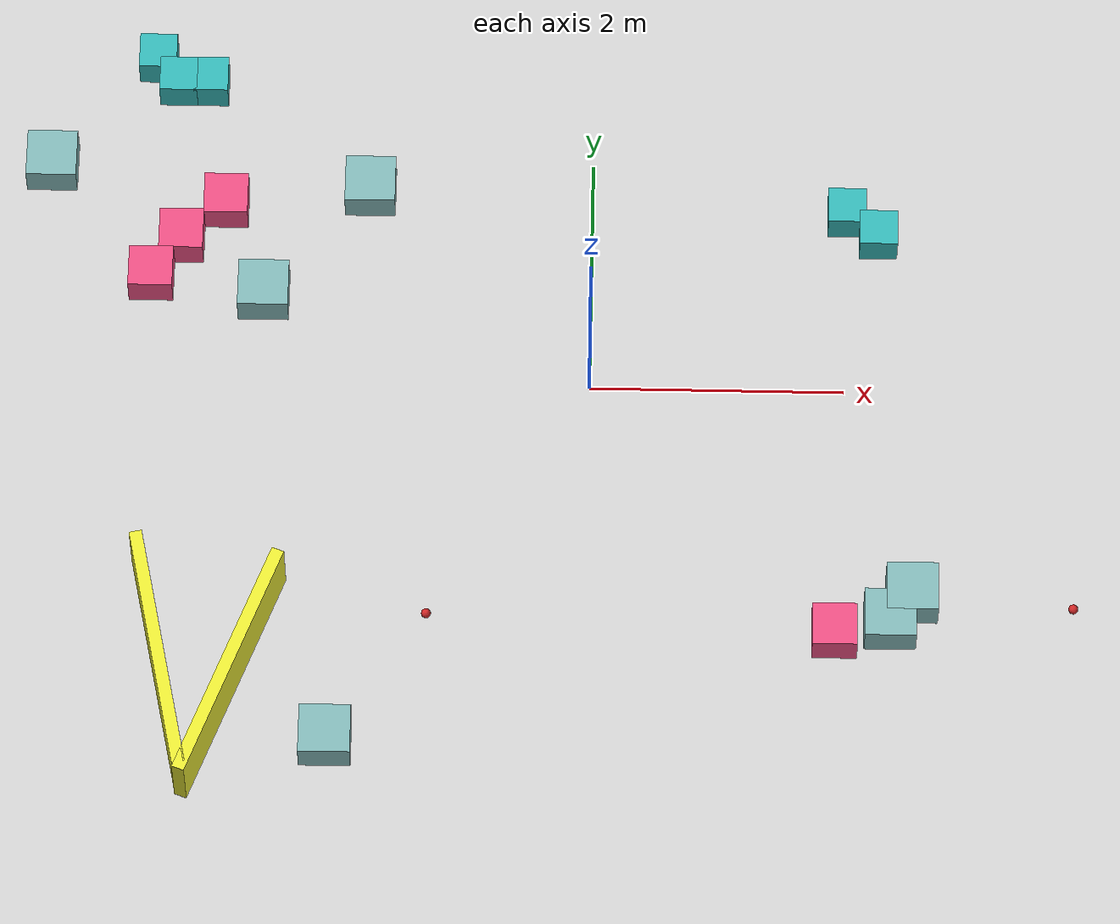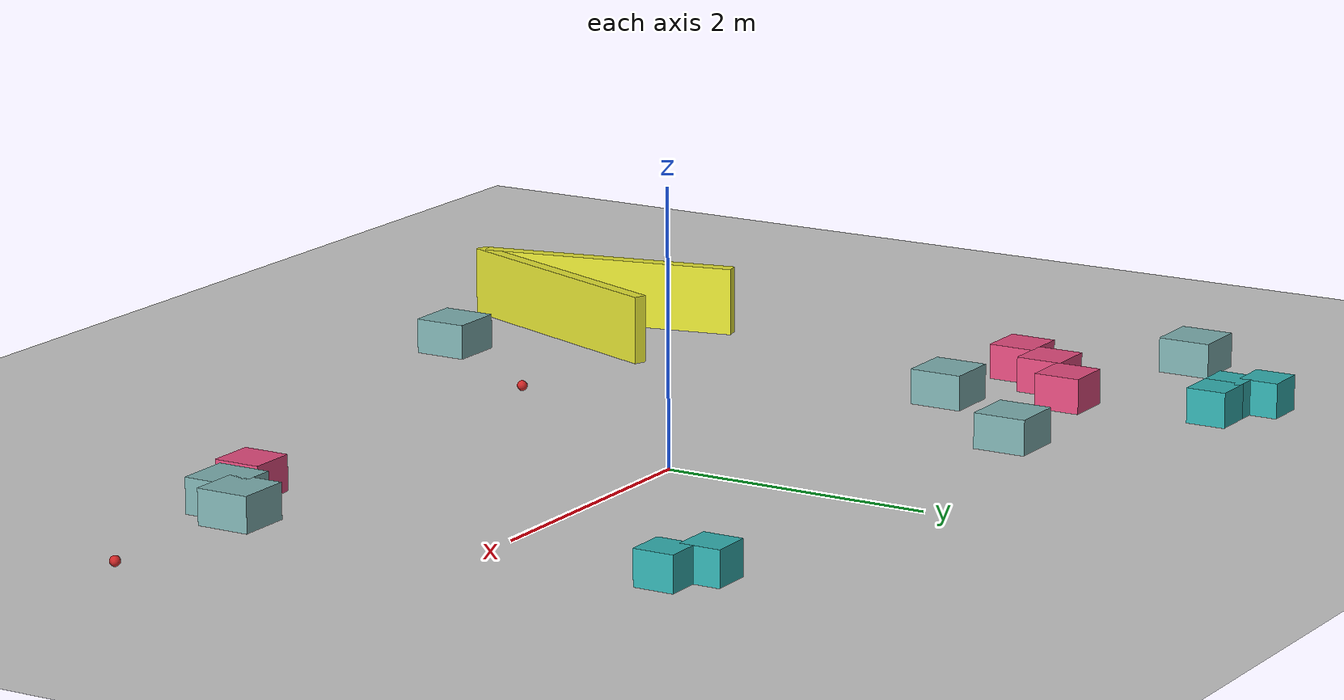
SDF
<sdf version="1.7">
 <world name="default">
  <model name="ground_plane">
   <static>1</static>
   <link name="link">
    <collision name="collision">
     <geometry><plane><normal>0 0 1</normal><size>100 100</size></plane></geometry>
     <surface><friction><ode><mu>100</mu><mu2>50</mu2></ode></friction></surface>
    </collision>
    <visual name="visual">
     <cast_shadows>0</cast_shadows>
     <geometry><plane><normal>0 0 1</normal><size>100 100</size></plane></geometry>
     <material>
      <script><uri>file://media/materials/scripts/gazebo.material</uri><name>Gazebo/Grey</name></script>
     </material>
    </visual>
   </link>
  </model>
  <model name="fl4sr_real_arena_8_target">
   <model name="target_ball_1">
    <link name="link">
     <pose>0 0 0.0375 0 -0 0</pose>
     <inertial>
      <mass>0.1467</mass>
      <inertia>
       <ixx>8.25187e-05</ixx>
       <ixy>0</ixy>
       <ixz>0</ixz>
       <iyy>8.25187e-05</iyy>
       <iyz>0</iyz>
       <izz>8.25187e-05</izz>
      </inertia>
     </inertial>
     <velocity_decay><linear>0</linear><angular>0.005</angular></velocity_decay>
     <visual name="visual">
      <geometry><sphere><radius>0.0375</radius></sphere></geometry>
      <material>
       <script><uri>file://media/materials/scripts/gazebo.material</uri><name>Gazebo/Red</name></script>
       <shader type="pixel"/>
      </material>
     </visual>
     <collision name="collision">
      <geometry><sphere><radius>0.0375</radius></sphere></geometry>
      <surface>
       <friction>
        <ode><mu>1</mu><mu2>1</mu2><fdir1>0 0 0</fdir1><slip1>0</slip1><slip2>0</slip2></ode>
        <torsional>
         <coefficient>1</coefficient>
         <patch_radius>0</patch_radius>
         <surface_radius>0.01</surface_radius>
         <use_patch_radius>0</use_patch_radius>
         <ode><slip>0</slip></ode>
        </torsional>
       </friction>
       <bounce><restitution_coefficient>0</restitution_coefficient><threshold>1e+06</threshold></bounce>
       <contact>
        <collide_without_contact>0</collide_without_contact>
        <collide_without_contact_bitmask>1</collide_without_contact_bitmask>
        <collide_bitmask>1</collide_bitmask>
        <ode>
         <soft_cfm>0</soft_cfm>
         <soft_erp>0.2</soft_erp>
         <kp>100000</kp>
         <kd>100</kd>
         <max_vel>100</max_vel>
         <min_depth>0.001</min_depth>
        </ode>
        <bullet>
         <split_impulse>1</split_impulse>
         <split_impulse_penetration_threshold>-0.01</split_impulse_penetration_threshold>
         <soft_cfm>0</soft_cfm>
         <soft_erp>0.2</soft_erp>
         <kp>100000</kp>
         <kd>100</kd>
        </bullet>
       </contact>
      </surface>
     </collision>
    </link>
    <static>0</static>
    <pose>2.09475 -2.72667 0 0 -0 0</pose>
   </model>
   <model name="target_ball_5">
    <link name="link">
     <pose>0 0 0.0375 0 -0 0</pose>
     <inertial>
      <mass>0.1467</mass>
      <inertia>
       <ixx>8.25187e-05</ixx>
       <ixy>0</ixy>
       <ixz>0</ixz>
       <iyy>8.25187e-05</iyy>
       <iyz>0</iyz>
       <izz>8.25187e-05</izz>
      </inertia>
     </inertial>
     <velocity_decay><linear>0</linear><angular>0.005</angular></velocity_decay>
     <visual name="visual">
      <geometry><sphere><radius>0.0375</radius></sphere></geometry>
      <material>
       <script><uri>file://media/materials/scripts/gazebo.material</uri><name>Gazebo/Red</name></script>
       <shader type="pixel"/>
      </material>
     </visual>
     <collision name="collision">
      <geometry><sphere><radius>0.0375</radius></sphere></geometry>
      <surface>
       <friction>
        <ode><mu>1</mu><mu2>1</mu2><fdir1>0 0 0</fdir1><slip1>0</slip1><slip2>0</slip2></ode>
        <torsional>
         <coefficient>1</coefficient>
         <patch_radius>0</patch_radius>
         <surface_radius>0.01</surface_radius>
         <use_patch_radius>0</use_patch_radius>
         <ode><slip>0</slip></ode>
        </torsional>
       </friction>
       <bounce><restitution_coefficient>0</restitution_coefficient><threshold>1e+06</threshold></bounce>
       <contact>
        <collide_without_contact>0</collide_without_contact>
        <collide_without_contact_bitmask>1</collide_without_contact_bitmask>
        <collide_bitmask>1</collide_bitmask>
        <ode>
         <soft_cfm>0</soft_cfm>
         <soft_erp>0.2</soft_erp>
         <kp>100000</kp>
         <kd>100</kd>
         <max_vel>100</max_vel>
         <min_depth>0.001</min_depth>
        </ode>
        <bullet>
         <split_impulse>1</split_impulse>
         <split_impulse_penetration_threshold>-0.01</split_impulse_penetration_threshold>
         <soft_cfm>0</soft_cfm>
         <soft_erp>0.2</soft_erp>
         <kp>100000</kp>
         <kd>100</kd>
        </bullet>
       </contact>
      </surface>
     </collision>
    </link>
    <static>0</static>
    <pose>-2.93744 -2.85263 0 0 -0 0</pose>
   </model>
   <static>0</static>
   <pose>1.69407 0.837479 0 0 -0 0</pose>
  </model>
  <model name="unit_box_0.3_0">
   <link name="link">
    <inertial>
     <mass>1</mass>
     <inertia>
      <ixx>0.166667</ixx>
      <ixy>0</ixy>
      <ixz>0</ixz>
      <iyy>0.166667</iyy>
      <iyz>0</iyz>
      <izz>0.166667</izz>
     </inertia>
    </inertial>
    <visual name="visual">
     <geometry><box><size>0.3 0.3 0.5</size></box></geometry>
     <material>
      <script><name>Gazebo/Grey</name><uri>file://media/materials/scripts/gazebo.material</uri></script>
      <shader type="pixel"><normal_map>__default__</normal_map></shader>
      <ambient>0.2 0.7 0.7 1</ambient>
      <diffuse>0.7 0.7 0.7 1</diffuse>
      <specular>0.01 0.01 0.01 1</specular>
      <emissive>0 0 0 1</emissive>
     </material>
    </visual>
    <collision name="collision">
     <geometry><box><size>0.3 0.3 0.5</size></box></geometry>
     <surface>
      <friction>
       <ode><mu>1</mu><mu2>1</mu2><fdir1>0 0 0</fdir1><slip1>0</slip1><slip2>0</slip2></ode>
       <torsional>
        <coefficient>1</coefficient>
        <patch_radius>0</patch_radius>
        <surface_radius>0</surface_radius>
        <use_patch_radius>1</use_patch_radius>
        <ode><slip>0</slip></ode>
       </torsional>
      </friction>
      <bounce><restitution_coefficient>0</restitution_coefficient><threshold>1e+06</threshold></bounce>
      <contact>
       <collide_without_contact>0</collide_without_contact>
       <collide_without_contact_bitmask>1</collide_without_contact_bitmask>
       <collide_bitmask>1</collide_bitmask>
       <ode>
        <soft_cfm>0</soft_cfm>
        <soft_erp>0.2</soft_erp>
        <kp>1e+13</kp>
        <kd>1</kd>
        <max_vel>0.01</max_vel>
        <min_depth>0</min_depth>
       </ode>
       <bullet>
        <split_impulse>1</split_impulse>
        <split_impulse_penetration_threshold>-0.01</split_impulse_penetration_threshold>
        <soft_cfm>0</soft_cfm>
        <soft_erp>0.2</soft_erp>
        <kp>1e+13</kp>
        <kd>1</kd>
       </bullet>
      </contact>
     </surface>
    </collision>
   </link>
   <static>0</static>
   <pose>2.27602 1.36252 0 0 -0 0</pose>
  </model>
  <model name="unit_box_0.3_1">
   <link name="link">
    <inertial>
     <mass>1</mass>
     <inertia>
      <ixx>0.166667</ixx>
      <ixy>0</ixy>
      <ixz>0</ixz>
      <iyy>0.166667</iyy>
      <iyz>0</iyz>
      <izz>0.166667</izz>
     </inertia>
    </inertial>
    <visual name="visual">
     <geometry><box><size>0.3 0.3 0.5</size></box></geometry>
     <material>
      <script><name>Gazebo/Grey</name><uri>file://media/materials/scripts/gazebo.material</uri></script>
      <shader type="pixel"><normal_map>__default__</normal_map></shader>
      <ambient>0.2 0.7 0.7 1</ambient>
      <diffuse>0.7 0.7 0.7 1</diffuse>
      <specular>0.01 0.01 0.01 1</specular>
      <emissive>0 0 0 1</emissive>
     </material>
    </visual>
    <collision name="collision">
     <geometry><box><size>0.3 0.3 0.5</size></box></geometry>
     <surface>
      <friction>
       <ode><mu>1</mu><mu2>1</mu2><fdir1>0 0 0</fdir1><slip1>0</slip1><slip2>0</slip2></ode>
       <torsional>
        <coefficient>1</coefficient>
        <patch_radius>0</patch_radius>
        <surface_radius>0</surface_radius>
        <use_patch_radius>1</use_patch_radius>
        <ode><slip>0</slip></ode>
       </torsional>
      </friction>
      <bounce><restitution_coefficient>0</restitution_coefficient><threshold>1e+06</threshold></bounce>
      <contact>
       <collide_without_contact>0</collide_without_contact>
       <collide_without_contact_bitmask>1</collide_without_contact_bitmask>
       <collide_bitmask>1</collide_bitmask>
       <ode>
        <soft_cfm>0</soft_cfm>
        <soft_erp>0.2</soft_erp>
        <kp>1e+13</kp>
        <kd>1</kd>
        <max_vel>0.01</max_vel>
        <min_depth>0</min_depth>
       </ode>
       <bullet>
        <split_impulse>1</split_impulse>
        <split_impulse_penetration_threshold>-0.01</split_impulse_penetration_threshold>
        <soft_cfm>0</soft_cfm>
        <soft_erp>0.2</soft_erp>
        <kp>1e+13</kp>
        <kd>1</kd>
       </bullet>
      </contact>
     </surface>
    </collision>
   </link>
   <static>0</static>
   <pose>2.02631 1.5587 0 0 -0 0</pose>
  </model>
  <model name="unit_box_0.35">
   <link name="link">
    <inertial>
     <mass>1</mass>
     <inertia>
      <ixx>0.166667</ixx>
      <ixy>0</ixy>
      <ixz>0</ixz>
      <iyy>0.166667</iyy>
      <iyz>0</iyz>
      <izz>0.166667</izz>
     </inertia>
    </inertial>
    <visual name="visual">
     <geometry><box><size>0.35 0.35 0.5</size></box></geometry>
     <material>
      <script><name>Gazebo/Grey</name><uri>file://media/materials/scripts/gazebo.material</uri></script>
      <shader type="pixel"><normal_map>__default__</normal_map></shader>
      <ambient>0.9 0.3 0.5 1</ambient>
      <diffuse>0.7 0.7 0.7 1</diffuse>
      <specular>0.01 0.01 0.01 1</specular>
      <emissive>0 0 0 1</emissive>
     </material>
    </visual>
    <collision name="collision">
     <geometry><box><size>0.35 0.35 0.5</size></box></geometry>
     <surface>
      <friction>
       <ode><mu>1</mu><mu2>1</mu2><fdir1>0 0 0</fdir1><slip1>0</slip1><slip2>0</slip2></ode>
       <torsional>
        <coefficient>1</coefficient>
        <patch_radius>0</patch_radius>
        <surface_radius>0</surface_radius>
        <use_patch_radius>1</use_patch_radius>
        <ode><slip>0</slip></ode>
       </torsional>
      </friction>
      <bounce><restitution_coefficient>0</restitution_coefficient><threshold>1e+06</threshold></bounce>
      <contact>
       <collide_without_contact>0</collide_without_contact>
       <collide_without_contact_bitmask>1</collide_without_contact_bitmask>
       <collide_bitmask>1</collide_bitmask>
       <ode>
        <soft_cfm>0</soft_cfm>
        <soft_erp>0.2</soft_erp>
        <kp>1e+13</kp>
        <kd>1</kd>
        <max_vel>0.01</max_vel>
        <min_depth>0</min_depth>
       </ode>
       <bullet>
        <split_impulse>1</split_impulse>
        <split_impulse_penetration_threshold>-0.01</split_impulse_penetration_threshold>
        <soft_cfm>0</soft_cfm>
        <soft_erp>0.2</soft_erp>
        <kp>1e+13</kp>
        <kd>1</kd>
       </bullet>
      </contact>
     </surface>
    </collision>
   </link>
   <static>0</static>
   <pose>1.92798 -2.14456 0 0 -0 0</pose>
  </model>
  <model name="unit_box_0.35_clone_clone_0">
   <link name="link">
    <inertial>
     <mass>1</mass>
     <inertia>
      <ixx>0.166667</ixx>
      <ixy>0</ixy>
      <ixz>0</ixz>
      <iyy>0.166667</iyy>
      <iyz>0</iyz>
      <izz>0.166667</izz>
     </inertia>
    </inertial>
    <visual name="visual">
     <geometry><box><size>0.35 0.35 0.5</size></box></geometry>
     <material>
      <script><name>Gazebo/Grey</name><uri>file://media/materials/scripts/gazebo.material</uri></script>
      <shader type="pixel"><normal_map>__default__</normal_map></shader>
      <ambient>0.9 0.3 0.5 1</ambient>
      <diffuse>0.7 0.7 0.7 1</diffuse>
      <specular>0.01 0.01 0.01 1</specular>
      <emissive>0 0 0 1</emissive>
     </material>
    </visual>
    <collision name="collision">
     <geometry><box><size>0.35 0.35 0.5</size></box></geometry>
     <surface>
      <friction>
       <ode><mu>1</mu><mu2>1</mu2><fdir1>0 0 0</fdir1><slip1>0</slip1><slip2>0</slip2></ode>
       <torsional>
        <coefficient>1</coefficient>
        <patch_radius>0</patch_radius>
        <surface_radius>0</surface_radius>
        <use_patch_radius>1</use_patch_radius>
        <ode><slip>0</slip></ode>
       </torsional>
      </friction>
      <bounce><restitution_coefficient>0</restitution_coefficient><threshold>1e+06</threshold></bounce>
      <contact>
       <collide_without_contact>0</collide_without_contact>
       <collide_without_contact_bitmask>1</collide_without_contact_bitmask>
       <collide_bitmask>1</collide_bitmask>
       <ode>
        <soft_cfm>0</soft_cfm>
        <soft_erp>0.2</soft_erp>
        <kp>1e+13</kp>
        <kd>1</kd>
        <max_vel>0.01</max_vel>
        <min_depth>0</min_depth>
       </ode>
       <bullet>
        <split_impulse>1</split_impulse>
        <split_impulse_penetration_threshold>-0.01</split_impulse_penetration_threshold>
        <soft_cfm>0</soft_cfm>
        <soft_erp>0.2</soft_erp>
        <kp>1e+13</kp>
        <kd>1</kd>
       </bullet>
      </contact>
     </surface>
    </collision>
   </link>
   <static>0</static>
   <pose>-2.92813 1.58019 0 0 -0 0</pose>
  </model>
  <model name="unit_box_0.35_clone_clone_1">
   <link name="link">
    <inertial>
     <mass>1</mass>
     <inertia>
      <ixx>0.166667</ixx>
      <ixy>0</ixy>
      <ixz>0</ixz>
      <iyy>0.166667</iyy>
      <iyz>0</iyz>
      <izz>0.166667</izz>
     </inertia>
    </inertial>
    <visual name="visual">
     <geometry><box><size>0.35 0.35 0.5</size></box></geometry>
     <material>
      <script><name>Gazebo/Grey</name><uri>file://media/materials/scripts/gazebo.material</uri></script>
      <shader type="pixel"><normal_map>__default__</normal_map></shader>
      <ambient>0.9 0.3 0.5 1</ambient>
      <diffuse>0.7 0.7 0.7 1</diffuse>
      <specular>0.01 0.01 0.01 1</specular>
      <emissive>0 0 0 1</emissive>
     </material>
    </visual>
    <collision name="collision">
     <geometry><box><size>0.35 0.35 0.5</size></box></geometry>
     <surface>
      <friction>
       <ode><mu>1</mu><mu2>1</mu2><fdir1>0 0 0</fdir1><slip1>0</slip1><slip2>0</slip2></ode>
       <torsional>
        <coefficient>1</coefficient>
        <patch_radius>0</patch_radius>
        <surface_radius>0</surface_radius>
        <use_patch_radius>1</use_patch_radius>
        <ode><slip>0</slip></ode>
       </torsional>
      </friction>
      <bounce><restitution_coefficient>0</restitution_coefficient><threshold>1e+06</threshold></bounce>
      <contact>
       <collide_without_contact>0</collide_without_contact>
       <collide_without_contact_bitmask>1</collide_without_contact_bitmask>
       <collide_bitmask>1</collide_bitmask>
       <ode>
        <soft_cfm>0</soft_cfm>
        <soft_erp>0.2</soft_erp>
        <kp>1e+13</kp>
        <kd>1</kd>
        <max_vel>0.01</max_vel>
        <min_depth>0</min_depth>
       </ode>
       <bullet>
        <split_impulse>1</split_impulse>
        <split_impulse_penetration_threshold>-0.01</split_impulse_penetration_threshold>
        <soft_cfm>0</soft_cfm>
        <soft_erp>0.2</soft_erp>
        <kp>1e+13</kp>
        <kd>1</kd>
       </bullet>
      </contact>
     </surface>
    </collision>
   </link>
   <static>0</static>
   <pose>-3.27276 1.25494 0 0 -0 0</pose>
  </model>
  <model name="unit_box_0.35_clone_clone_2">
   <link name="link">
    <inertial>
     <mass>1</mass>
     <inertia>
      <ixx>0.166667</ixx>
      <ixy>0</ixy>
      <ixz>0</ixz>
      <iyy>0.166667</iyy>
      <iyz>0</iyz>
      <izz>0.166667</izz>
     </inertia>
    </inertial>
    <visual name="visual">
     <geometry><box><size>0.35 0.35 0.5</size></box></geometry>
     <material>
      <script><name>Gazebo/Grey</name><uri>file://media/materials/scripts/gazebo.material</uri></script>
      <shader type="pixel"><normal_map>__default__</normal_map></shader>
      <ambient>0.9 0.3 0.5 1</ambient>
      <diffuse>0.7 0.7 0.7 1</diffuse>
      <specular>0.01 0.01 0.01 1</specular>
      <emissive>0 0 0 1</emissive>
     </material>
    </visual>
    <collision name="collision">
     <geometry><box><size>0.35 0.35 0.5</size></box></geometry>
     <surface>
      <friction>
       <ode><mu>1</mu><mu2>1</mu2><fdir1>0 0 0</fdir1><slip1>0</slip1><slip2>0</slip2></ode>
       <torsional>
        <coefficient>1</coefficient>
        <patch_radius>0</patch_radius>
        <surface_radius>0</surface_radius>
        <use_patch_radius>1</use_patch_radius>
        <ode><slip>0</slip></ode>
       </torsional>
      </friction>
      <bounce><restitution_coefficient>0</restitution_coefficient><threshold>1e+06</threshold></bounce>
      <contact>
       <collide_without_contact>0</collide_without_contact>
       <collide_without_contact_bitmask>1</collide_without_contact_bitmask>
       <collide_bitmask>1</collide_bitmask>
       <ode>
        <soft_cfm>0</soft_cfm>
        <soft_erp>0.2</soft_erp>
        <kp>1e+13</kp>
        <kd>1</kd>
        <max_vel>0.01</max_vel>
        <min_depth>0</min_depth>
       </ode>
       <bullet>
        <split_impulse>1</split_impulse>
        <split_impulse_penetration_threshold>-0.01</split_impulse_penetration_threshold>
        <soft_cfm>0</soft_cfm>
        <soft_erp>0.2</soft_erp>
        <kp>1e+13</kp>
        <kd>1</kd>
       </bullet>
      </contact>
     </surface>
    </collision>
   </link>
   <static>0</static>
   <pose>-3.50234 0.910557 0 0 -0 0</pose>
  </model>
  <model name="unit_box_0.3_1_clone_clone">
   <link name="link">
    <inertial>
     <mass>1</mass>
     <inertia>
      <ixx>0.166667</ixx>
      <ixy>0</ixy>
      <ixz>0</ixz>
      <iyy>0.166667</iyy>
      <iyz>0</iyz>
      <izz>0.166667</izz>
     </inertia>
    </inertial>
    <visual name="visual">
     <geometry><box><size>0.3 0.3 0.5</size></box></geometry>
     <material>
      <script><name>Gazebo/Grey</name><uri>file://media/materials/scripts/gazebo.material</uri></script>
      <shader type="pixel"><normal_map>__default__</normal_map></shader>
      <ambient>0.2 0.7 0.7 1</ambient>
      <diffuse>0.7 0.7 0.7 1</diffuse>
      <specular>0.01 0.01 0.01 1</specular>
      <emissive>0 0 0 1</emissive>
     </material>
    </visual>
    <collision name="collision">
     <geometry><box><size>0.3 0.3 0.5</size></box></geometry>
     <surface>
      <friction>
       <ode><mu>1</mu><mu2>1</mu2><fdir1>0 0 0</fdir1><slip1>0</slip1><slip2>0</slip2></ode>
       <torsional>
        <coefficient>1</coefficient>
        <patch_radius>0</patch_radius>
        <surface_radius>0</surface_radius>
        <use_patch_radius>1</use_patch_radius>
        <ode><slip>0</slip></ode>
       </torsional>
      </friction>
      <bounce><restitution_coefficient>0</restitution_coefficient><threshold>1e+06</threshold></bounce>
      <contact>
       <collide_without_contact>0</collide_without_contact>
       <collide_without_contact_bitmask>1</collide_without_contact_bitmask>
       <collide_bitmask>1</collide_bitmask>
       <ode>
        <soft_cfm>0</soft_cfm>
        <soft_erp>0.2</soft_erp>
        <kp>1e+13</kp>
        <kd>1</kd>
        <max_vel>0.01</max_vel>
        <min_depth>0</min_depth>
       </ode>
       <bullet>
        <split_impulse>1</split_impulse>
        <split_impulse_penetration_threshold>-0.01</split_impulse_penetration_threshold>
        <soft_cfm>0</soft_cfm>
        <soft_erp>0.2</soft_erp>
        <kp>1e+13</kp>
        <kd>1</kd>
       </bullet>
      </contact>
     </surface>
    </collision>
   </link>
   <static>0</static>
   <pose>-3.35003 2.67149 0 0 -0 0</pose>
  </model>
  <model name="unit_box_0.3_1_clone_clone_0">
   <link name="link">
    <inertial>
     <mass>1</mass>
     <inertia>
      <ixx>0.166667</ixx>
      <ixy>0</ixy>
      <ixz>0</ixz>
      <iyy>0.166667</iyy>
      <iyz>0</iyz>
      <izz>0.166667</izz>
     </inertia>
    </inertial>
    <visual name="visual">
     <geometry><box><size>0.3 0.3 0.5</size></box></geometry>
     <material>
      <script><name>Gazebo/Grey</name><uri>file://media/materials/scripts/gazebo.material</uri></script>
      <shader type="pixel"><normal_map>__default__</normal_map></shader>
      <ambient>0.2 0.7 0.7 1</ambient>
      <diffuse>0.7 0.7 0.7 1</diffuse>
      <specular>0.01 0.01 0.01 1</specular>
      <emissive>0 0 0 1</emissive>
     </material>
    </visual>
    <collision name="collision">
     <geometry><box><size>0.3 0.3 0.5</size></box></geometry>
     <surface>
      <friction>
       <ode><mu>1</mu><mu2>1</mu2><fdir1>0 0 0</fdir1><slip1>0</slip1><slip2>0</slip2></ode>
       <torsional>
        <coefficient>1</coefficient>
        <patch_radius>0</patch_radius>
        <surface_radius>0</surface_radius>
        <use_patch_radius>1</use_patch_radius>
        <ode><slip>0</slip></ode>
       </torsional>
      </friction>
      <bounce><restitution_coefficient>0</restitution_coefficient><threshold>1e+06</threshold></bounce>
      <contact>
       <collide_without_contact>0</collide_without_contact>
       <collide_without_contact_bitmask>1</collide_without_contact_bitmask>
       <collide_bitmask>1</collide_bitmask>
       <ode>
        <soft_cfm>0</soft_cfm>
        <soft_erp>0.2</soft_erp>
        <kp>1e+13</kp>
        <kd>1</kd>
        <max_vel>0.01</max_vel>
        <min_depth>0</min_depth>
       </ode>
       <bullet>
        <split_impulse>1</split_impulse>
        <split_impulse_penetration_threshold>-0.01</split_impulse_penetration_threshold>
        <soft_cfm>0</soft_cfm>
        <soft_erp>0.2</soft_erp>
        <kp>1e+13</kp>
        <kd>1</kd>
       </bullet>
      </contact>
     </surface>
    </collision>
   </link>
   <static>0</static>
   <pose>-3.10134 2.67149 0 0 -0 0</pose>
  </model>
  <model name="unit_box_0.3_1_clone_clone_1">
   <link name="link">
    <inertial>
     <mass>1</mass>
     <inertia>
      <ixx>0.166667</ixx>
      <ixy>0</ixy>
      <ixz>0</ixz>
      <iyy>0.166667</iyy>
      <iyz>0</iyz>
      <izz>0.166667</izz>
     </inertia>
    </inertial>
    <visual name="visual">
     <geometry><box><size>0.3 0.3 0.5</size></box></geometry>
     <material>
      <script><name>Gazebo/Grey</name><uri>file://media/materials/scripts/gazebo.material</uri></script>
      <shader type="pixel"><normal_map>__default__</normal_map></shader>
      <ambient>0.2 0.7 0.7 1</ambient>
      <diffuse>0.7 0.7 0.7 1</diffuse>
      <specular>0.01 0.01 0.01 1</specular>
      <emissive>0 0 0 1</emissive>
     </material>
    </visual>
    <collision name="collision">
     <geometry><box><size>0.3 0.3 0.5</size></box></geometry>
     <surface>
      <friction>
       <ode><mu>1</mu><mu2>1</mu2><fdir1>0 0 0</fdir1><slip1>0</slip1><slip2>0</slip2></ode>
       <torsional>
        <coefficient>1</coefficient>
        <patch_radius>0</patch_radius>
        <surface_radius>0</surface_radius>
        <use_patch_radius>1</use_patch_radius>
        <ode><slip>0</slip></ode>
       </torsional>
      </friction>
      <bounce><restitution_coefficient>0</restitution_coefficient><threshold>1e+06</threshold></bounce>
      <contact>
       <collide_without_contact>0</collide_without_contact>
       <collide_without_contact_bitmask>1</collide_without_contact_bitmask>
       <collide_bitmask>1</collide_bitmask>
       <ode>
        <soft_cfm>0</soft_cfm>
        <soft_erp>0.2</soft_erp>
        <kp>1e+13</kp>
        <kd>1</kd>
        <max_vel>0.01</max_vel>
        <min_depth>0</min_depth>
       </ode>
       <bullet>
        <split_impulse>1</split_impulse>
        <split_impulse_penetration_threshold>-0.01</split_impulse_penetration_threshold>
        <soft_cfm>0</soft_cfm>
        <soft_erp>0.2</soft_erp>
        <kp>1e+13</kp>
        <kd>1</kd>
       </bullet>
      </contact>
     </surface>
    </collision>
   </link>
   <static>0</static>
   <pose>-3.52221 2.88195 0 0 -0 0</pose>
  </model>
  <model name="unit_box_0.4_clone_2">
   <link name="link">
    <inertial>
     <mass>1</mass>
     <inertia>
      <ixx>0.166667</ixx>
      <ixy>0</ixy>
      <ixz>0</ixz>
      <iyy>0.166667</iyy>
      <iyz>0</iyz>
      <izz>0.166667</izz>
     </inertia>
    </inertial>
    <visual name="visual">
     <geometry><box><size>0.4 0.4 0.5</size></box></geometry>
     <material>
      <script><name>Gazebo/Grey</name><uri>file://media/materials/scripts/gazebo.material</uri></script>
      <shader type="pixel"><normal_map>__default__</normal_map></shader>
      <ambient>0.7 0.8 0.4 1</ambient>
      <diffuse>0.5 0.7 0.7 1</diffuse>
      <specular>0.01 0.01 0.01 1</specular>
      <emissive>0 0 0 1</emissive>
     </material>
    </visual>
    <collision name="collision">
     <geometry><box><size>0.4 0.4 0.5</size></box></geometry>
     <surface>
      <friction>
       <ode><mu>1</mu><mu2>1</mu2><fdir1>0 0 0</fdir1><slip1>0</slip1><slip2>0</slip2></ode>
       <torsional>
        <coefficient>1</coefficient>
        <patch_radius>0</patch_radius>
        <surface_radius>0</surface_radius>
        <use_patch_radius>1</use_patch_radius>
        <ode><slip>0</slip></ode>
       </torsional>
      </friction>
      <bounce><restitution_coefficient>0</restitution_coefficient><threshold>1e+06</threshold></bounce>
      <contact>
       <collide_without_contact>0</collide_without_contact>
       <collide_without_contact_bitmask>1</collide_without_contact_bitmask>
       <collide_bitmask>1</collide_bitmask>
       <ode>
        <soft_cfm>0</soft_cfm>
        <soft_erp>0.2</soft_erp>
        <kp>1e+13</kp>
        <kd>1</kd>
        <max_vel>0.01</max_vel>
        <min_depth>0</min_depth>
       </ode>
       <bullet>
        <split_impulse>1</split_impulse>
        <split_impulse_penetration_threshold>-0.01</split_impulse_penetration_threshold>
        <soft_cfm>0</soft_cfm>
        <soft_erp>0.2</soft_erp>
        <kp>1e+13</kp>
        <kd>1</kd>
       </bullet>
      </contact>
     </surface>
    </collision>
   </link>
   <static>0</static>
   <pose>-1.78118 1.73401 0 0 -0 0</pose>
  </model>
  <model name="unit_box_0.4_clone_3">
   <link name="link">
    <inertial>
     <mass>1</mass>
     <inertia>
      <ixx>0.166667</ixx>
      <ixy>0</ixy>
      <ixz>0</ixz>
      <iyy>0.166667</iyy>
      <iyz>0</iyz>
      <izz>0.166667</izz>
     </inertia>
    </inertial>
    <visual name="visual">
     <geometry><box><size>0.4 0.4 0.5</size></box></geometry>
     <material>
      <script><name>Gazebo/Grey</name><uri>file://media/materials/scripts/gazebo.material</uri></script>
      <shader type="pixel"><normal_map>__default__</normal_map></shader>
      <ambient>0.7 0.8 0.4 1</ambient>
      <diffuse>0.5 0.7 0.7 1</diffuse>
      <specular>0.01 0.01 0.01 1</specular>
      <emissive>0 0 0 1</emissive>
     </material>
    </visual>
    <collision name="collision">
     <geometry><box><size>0.4 0.4 0.5</size></box></geometry>
     <surface>
      <friction>
       <ode><mu>1</mu><mu2>1</mu2><fdir1>0 0 0</fdir1><slip1>0</slip1><slip2>0</slip2></ode>
       <torsional>
        <coefficient>1</coefficient>
        <patch_radius>0</patch_radius>
        <surface_radius>0</surface_radius>
        <use_patch_radius>1</use_patch_radius>
        <ode><slip>0</slip></ode>
       </torsional>
      </friction>
      <bounce><restitution_coefficient>0</restitution_coefficient><threshold>1e+06</threshold></bounce>
      <contact>
       <collide_without_contact>0</collide_without_contact>
       <collide_without_contact_bitmask>1</collide_without_contact_bitmask>
       <collide_bitmask>1</collide_bitmask>
       <ode>
        <soft_cfm>0</soft_cfm>
        <soft_erp>0.2</soft_erp>
        <kp>1e+13</kp>
        <kd>1</kd>
        <max_vel>0.01</max_vel>
        <min_depth>0</min_depth>
       </ode>
       <bullet>
        <split_impulse>1</split_impulse>
        <split_impulse_penetration_threshold>-0.01</split_impulse_penetration_threshold>
        <soft_cfm>0</soft_cfm>
        <soft_erp>0.2</soft_erp>
        <kp>1e+13</kp>
        <kd>1</kd>
       </bullet>
      </contact>
     </surface>
    </collision>
   </link>
   <static>0</static>
   <pose>-2.60381 0.777397 0 0 -0 0</pose>
  </model>
  <model name="unit_box_0.4_clone_4">
   <link name="link">
    <inertial>
     <mass>1</mass>
     <inertia>
      <ixx>0.166667</ixx>
      <ixy>0</ixy>
      <ixz>0</ixz>
      <iyy>0.166667</iyy>
      <iyz>0</iyz>
      <izz>0.166667</izz>
     </inertia>
    </inertial>
    <visual name="visual">
     <geometry><box><size>0.4 0.4 0.5</size></box></geometry>
     <material>
      <script><name>Gazebo/Grey</name><uri>file://media/materials/scripts/gazebo.material</uri></script>
      <shader type="pixel"><normal_map>__default__</normal_map></shader>
      <ambient>0.7 0.8 0.4 1</ambient>
      <diffuse>0.5 0.7 0.7 1</diffuse>
      <specular>0.01 0.01 0.01 1</specular>
      <emissive>0 0 0 1</emissive>
     </material>
    </visual>
    <collision name="collision">
     <geometry><box><size>0.4 0.4 0.5</size></box></geometry>
     <surface>
      <friction>
       <ode><mu>1</mu><mu2>1</mu2><fdir1>0 0 0</fdir1><slip1>0</slip1><slip2>0</slip2></ode>
       <torsional>
        <coefficient>1</coefficient>
        <patch_radius>0</patch_radius>
        <surface_radius>0</surface_radius>
        <use_patch_radius>1</use_patch_radius>
        <ode><slip>0</slip></ode>
       </torsional>
      </friction>
      <bounce><restitution_coefficient>0</restitution_coefficient><threshold>1e+06</threshold></bounce>
      <contact>
       <collide_without_contact>0</collide_without_contact>
       <collide_without_contact_bitmask>1</collide_without_contact_bitmask>
       <collide_bitmask>1</collide_bitmask>
       <ode>
        <soft_cfm>0</soft_cfm>
        <soft_erp>0.2</soft_erp>
        <kp>1e+13</kp>
        <kd>1</kd>
        <max_vel>0.01</max_vel>
        <min_depth>0</min_depth>
       </ode>
       <bullet>
        <split_impulse>1</split_impulse>
        <split_impulse_penetration_threshold>-0.01</split_impulse_penetration_threshold>
        <soft_cfm>0</soft_cfm>
        <soft_erp>0.2</soft_erp>
        <kp>1e+13</kp>
        <kd>1</kd>
       </bullet>
      </contact>
     </surface>
    </collision>
   </link>
   <static>0</static>
   <pose>-4.33532 1.92173 0 0 -0 0</pose>
  </model>
  <model name="wooden_wall_2_clone_0_clone">
   <link name="link_1">
    <inertial>
     <mass>1</mass>
     <inertia>
      <ixx>0.166667</ixx>
      <ixy>0</ixy>
      <ixz>0</ixz>
      <iyy>0.166667</iyy>
      <iyz>0</iyz>
      <izz>0.166667</izz>
     </inertia>
    </inertial>
    <visual name="visual">
     <geometry><box><size>2 0.1 1</size></box></geometry>
     <material>
      <lighting>1</lighting>
      <script><uri>file://media/materials/scripts/gazebo.material</uri><name>Gazebo/Grey</name></script>
      <shader type="pixel"><normal_map>__default__</normal_map></shader>
      <ambient>0.9 0.9 0.2 1</ambient>
      <diffuse>0.7 0.7 0.7 1</diffuse>
      <specular>0.01 0.01 0.01 1</specular>
      <emissive>0 0 0 1</emissive>
     </material>
    </visual>
    <collision name="collision">
     <geometry><box><size>2 0.1 1</size></box></geometry>
     <surface>
      <friction>
       <ode><mu>1</mu><mu2>1</mu2><fdir1>0 0 0</fdir1><slip1>0</slip1><slip2>0</slip2></ode>
       <torsional>
        <coefficient>1</coefficient>
        <patch_radius>0</patch_radius>
        <surface_radius>0</surface_radius>
        <use_patch_radius>1</use_patch_radius>
        <ode><slip>0</slip></ode>
       </torsional>
      </friction>
      <bounce><restitution_coefficient>0</restitution_coefficient><threshold>1e+06</threshold></bounce>
      <contact>
       <collide_without_contact>0</collide_without_contact>
       <collide_without_contact_bitmask>1</collide_without_contact_bitmask>
       <collide_bitmask>1</collide_bitmask>
       <ode>
        <soft_cfm>0</soft_cfm>
        <soft_erp>0.2</soft_erp>
        <kp>1e+13</kp>
        <kd>1</kd>
        <max_vel>0.01</max_vel>
        <min_depth>0</min_depth>
       </ode>
       <bullet>
        <split_impulse>1</split_impulse>
        <split_impulse_penetration_threshold>-0.01</split_impulse_penetration_threshold>
        <soft_cfm>0</soft_cfm>
        <soft_erp>0.2</soft_erp>
        <kp>1e+13</kp>
        <kd>1</kd>
       </bullet>
      </contact>
     </surface>
    </collision>
   </link>
   <static>0</static>
   <pose>-2.74129 -2.64846 0 0 -0 1.21273</pose>
  </model>
  <model name="wooden_wall_2_clone_clone_clone">
   <link name="link_1">
    <inertial>
     <mass>1</mass>
     <inertia>
      <ixx>0.166667</ixx>
      <ixy>0</ixy>
      <ixz>0</ixz>
      <iyy>0.166667</iyy>
      <iyz>0</iyz>
      <izz>0.166667</izz>
     </inertia>
    </inertial>
    <visual name="visual">
     <geometry><box><size>2 0.1 1</size></box></geometry>
     <material>
      <lighting>1</lighting>
      <script><uri>file://media/materials/scripts/gazebo.material</uri><name>Gazebo/Grey</name></script>
      <shader type="pixel"><normal_map>__default__</normal_map></shader>
      <ambient>0.9 0.9 0.2 1</ambient>
      <diffuse>0.7 0.7 0.7 1</diffuse>
      <specular>0.01 0.01 0.01 1</specular>
      <emissive>0 0 0 1</emissive>
     </material>
    </visual>
    <collision name="collision">
     <geometry><box><size>2 0.1 1</size></box></geometry>
     <surface>
      <friction>
       <ode><mu>1</mu><mu2>1</mu2><fdir1>0 0 0</fdir1><slip1>0</slip1><slip2>0</slip2></ode>
       <torsional>
        <coefficient>1</coefficient>
        <patch_radius>0</patch_radius>
        <surface_radius>0</surface_radius>
        <use_patch_radius>1</use_patch_radius>
        <ode><slip>0</slip></ode>
       </torsional>
      </friction>
      <bounce><restitution_coefficient>0</restitution_coefficient><threshold>1e+06</threshold></bounce>
      <contact>
       <collide_without_contact>0</collide_without_contact>
       <collide_without_contact_bitmask>1</collide_without_contact_bitmask>
       <collide_bitmask>1</collide_bitmask>
       <ode>
        <soft_cfm>0</soft_cfm>
        <soft_erp>0.2</soft_erp>
        <kp>1e+13</kp>
        <kd>1</kd>
        <max_vel>0.01</max_vel>
        <min_depth>0</min_depth>
       </ode>
       <bullet>
        <split_impulse>1</split_impulse>
        <split_impulse_penetration_threshold>-0.01</split_impulse_penetration_threshold>
        <soft_cfm>0</soft_cfm>
        <soft_erp>0.2</soft_erp>
        <kp>1e+13</kp>
        <kd>1</kd>
       </bullet>
      </contact>
     </surface>
    </collision>
   </link>
   <static>0</static>
   <pose>-3.29612 -2.55276 0 0 -0 1.77834</pose>
  </model>
  <model name="unit_box_0.4_clone_3_clone_1">
   <link name="link">
    <inertial>
     <mass>1</mass>
     <inertia>
      <ixx>0.166667</ixx>
      <ixy>0</ixy>
      <ixz>0</ixz>
      <iyy>0.166667</iyy>
      <iyz>0</iyz>
      <izz>0.166667</izz>
     </inertia>
    </inertial>
    <visual name="visual">
     <geometry><box><size>0.4 0.4 0.5</size></box></geometry>
     <material>
      <script><name>Gazebo/Grey</name><uri>file://media/materials/scripts/gazebo.material</uri></script>
      <shader type="pixel"><normal_map>__default__</normal_map></shader>
      <ambient>0.7 0.8 0.4 1</ambient>
      <diffuse>0.5 0.7 0.7 1</diffuse>
      <specular>0.01 0.01 0.01 1</specular>
      <emissive>0 0 0 1</emissive>
     </material>
    </visual>
    <collision name="collision">
     <geometry><box><size>0.4 0.4 0.5</size></box></geometry>
     <surface>
      <friction>
       <ode><mu>1</mu><mu2>1</mu2><fdir1>0 0 0</fdir1><slip1>0</slip1><slip2>0</slip2></ode>
       <torsional>
        <coefficient>1</coefficient>
        <patch_radius>0</patch_radius>
        <surface_radius>0</surface_radius>
        <use_patch_radius>1</use_patch_radius>
        <ode><slip>0</slip></ode>
       </torsional>
      </friction>
      <bounce><restitution_coefficient>0</restitution_coefficient><threshold>1e+06</threshold></bounce>
      <contact>
       <collide_without_contact>0</collide_without_contact>
       <collide_without_contact_bitmask>1</collide_without_contact_bitmask>
       <collide_bitmask>1</collide_bitmask>
       <ode>
        <soft_cfm>0</soft_cfm>
        <soft_erp>0.2</soft_erp>
        <kp>1e+13</kp>
        <kd>1</kd>
        <max_vel>0.01</max_vel>
        <min_depth>0</min_depth>
       </ode>
       <bullet>
        <split_impulse>1</split_impulse>
        <split_impulse_penetration_threshold>-0.01</split_impulse_penetration_threshold>
        <soft_cfm>0</soft_cfm>
        <soft_erp>0.2</soft_erp>
        <kp>1e+13</kp>
        <kd>1</kd>
       </bullet>
      </contact>
     </surface>
    </collision>
   </link>
   <static>0</static>
   <pose>-1.99517 -3.10768 0 0 -0 0</pose>
  </model>
  <model name="unit_box_0.4_clone_5">
   <link name="link">
    <inertial>
     <mass>1</mass>
     <inertia>
      <ixx>0.166667</ixx>
      <ixy>0</ixy>
      <ixz>0</ixz>
      <iyy>0.166667</iyy>
      <iyz>0</iyz>
      <izz>0.166667</izz>
     </inertia>
    </inertial>
    <visual name="visual">
     <geometry><box><size>0.4 0.4 0.5</size></box></geometry>
     <material>
      <script><name>Gazebo/Grey</name><uri>file://media/materials/scripts/gazebo.material</uri></script>
      <shader type="pixel"><normal_map>__default__</normal_map></shader>
      <ambient>0.7 0.8 0.4 1</ambient>
      <diffuse>0.5 0.7 0.7 1</diffuse>
      <specular>0.01 0.01 0.01 1</specular>
      <emissive>0 0 0 1</emissive>
     </material>
    </visual>
    <collision name="collision">
     <geometry><box><size>0.4 0.4 0.5</size></box></geometry>
     <surface>
      <friction>
       <ode><mu>1</mu><mu2>1</mu2><fdir1>0 0 0</fdir1><slip1>0</slip1><slip2>0</slip2></ode>
       <torsional>
        <coefficient>1</coefficient>
        <patch_radius>0</patch_radius>
        <surface_radius>0</surface_radius>
        <use_patch_radius>1</use_patch_radius>
        <ode><slip>0</slip></ode>
       </torsional>
      </friction>
      <bounce><restitution_coefficient>0</restitution_coefficient><threshold>1e+06</threshold></bounce>
      <contact>
       <collide_without_contact>0</collide_without_contact>
       <collide_without_contact_bitmask>1</collide_without_contact_bitmask>
       <collide_bitmask>1</collide_bitmask>
       <ode>
        <soft_cfm>0</soft_cfm>
        <soft_erp>0.2</soft_erp>
        <kp>1e+13</kp>
        <kd>1</kd>
        <max_vel>0.01</max_vel>
        <min_depth>0</min_depth>
       </ode>
       <bullet>
        <split_impulse>1</split_impulse>
        <split_impulse_penetration_threshold>-0.01</split_impulse_penetration_threshold>
        <soft_cfm>0</soft_cfm>
        <soft_erp>0.2</soft_erp>
        <kp>1e+13</kp>
        <kd>1</kd>
       </bullet>
      </contact>
     </surface>
    </collision>
   </link>
   <static>0</static>
   <pose>2.36019 -2.03583 0 0 -0 0</pose>
  </model>
  <model name="unit_box_0.4_clone_6">
   <link name="link">
    <inertial>
     <mass>1</mass>
     <inertia>
      <ixx>0.166667</ixx>
      <ixy>0</ixy>
      <ixz>0</ixz>
      <iyy>0.166667</iyy>
      <iyz>0</iyz>
      <izz>0.166667</izz>
     </inertia>
    </inertial>
    <visual name="visual">
     <geometry><box><size>0.4 0.4 0.5</size></box></geometry>
     <material>
      <script><name>Gazebo/Grey</name><uri>file://media/materials/scripts/gazebo.material</uri></script>
      <shader type="pixel"><normal_map>__default__</normal_map></shader>
      <ambient>0.7 0.8 0.4 1</ambient>
      <diffuse>0.5 0.7 0.7 1</diffuse>
      <specular>0.01 0.01 0.01 1</specular>
      <emissive>0 0 0 1</emissive>
     </material>
    </visual>
    <collision name="collision">
     <geometry><box><size>0.4 0.4 0.5</size></box></geometry>
     <surface>
      <friction>
       <ode><mu>1</mu><mu2>1</mu2><fdir1>0 0 0</fdir1><slip1>0</slip1><slip2>0</slip2></ode>
       <torsional>
        <coefficient>1</coefficient>
        <patch_radius>0</patch_radius>
        <surface_radius>0</surface_radius>
        <use_patch_radius>1</use_patch_radius>
        <ode><slip>0</slip></ode>
       </torsional>
      </friction>
      <bounce><restitution_coefficient>0</restitution_coefficient><threshold>1e+06</threshold></bounce>
      <contact>
       <collide_without_contact>0</collide_without_contact>
       <collide_without_contact_bitmask>1</collide_without_contact_bitmask>
       <collide_bitmask>1</collide_bitmask>
       <ode>
        <soft_cfm>0</soft_cfm>
        <soft_erp>0.2</soft_erp>
        <kp>1e+13</kp>
        <kd>1</kd>
        <max_vel>0.01</max_vel>
        <min_depth>0</min_depth>
       </ode>
       <bullet>
        <split_impulse>1</split_impulse>
        <split_impulse_penetration_threshold>-0.01</split_impulse_penetration_threshold>
        <soft_cfm>0</soft_cfm>
        <soft_erp>0.2</soft_erp>
        <kp>1e+13</kp>
        <kd>1</kd>
       </bullet>
      </contact>
     </surface>
    </collision>
   </link>
   <static>0</static>
   <pose>2.53238 -1.80637 0 0 -0 0</pose>
  </model>
 </world>
</sdf>
